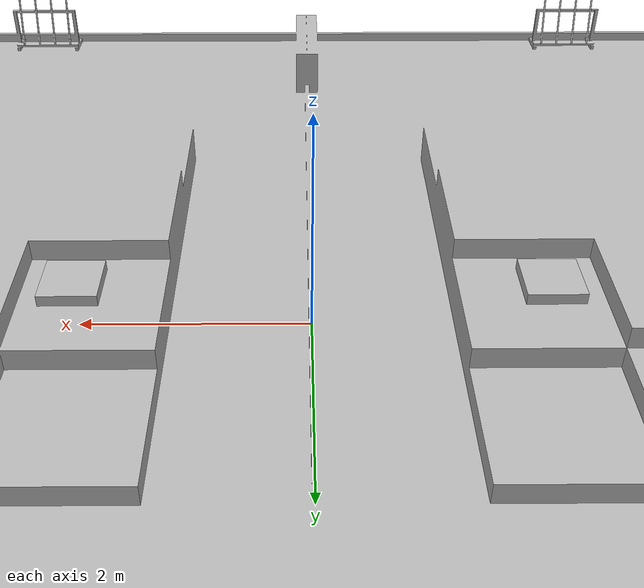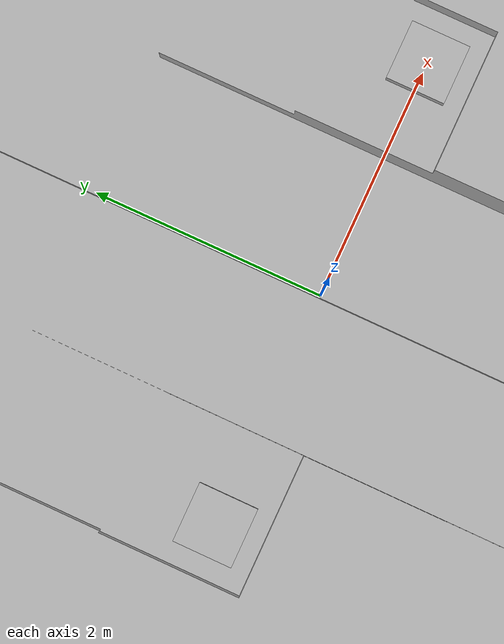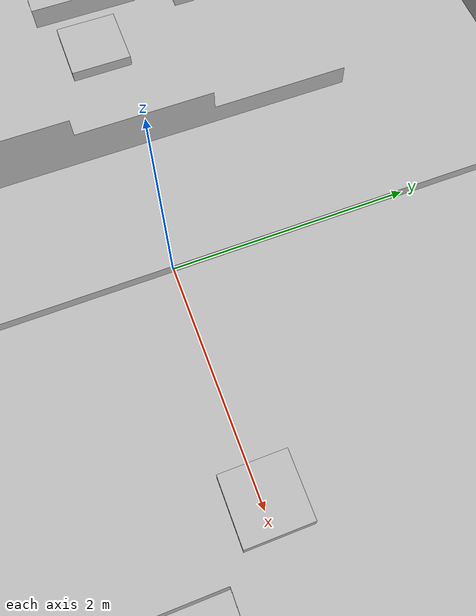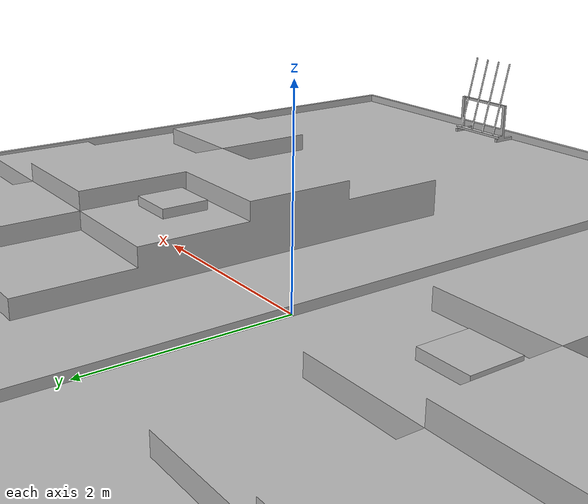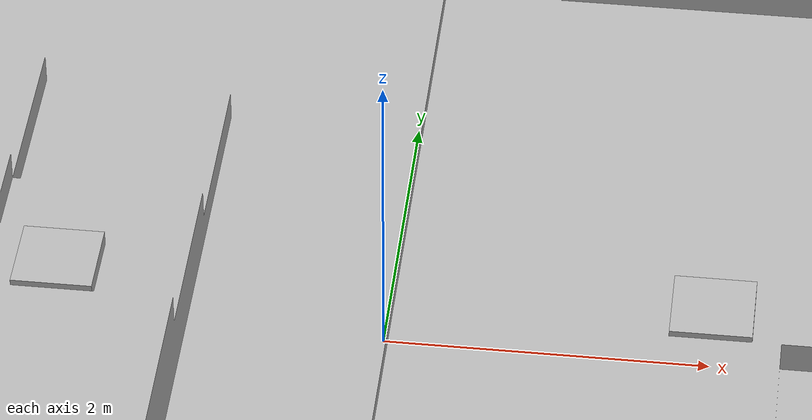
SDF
<?xml version="1.0" ?>
<sdf version="1.6">
  <world name="default">
    <!-- No sun or ground plane to avoid network model fetches -->

    <!-- Add a simple light source manually so we can see something -->
    <light type="directional" name="sun_manual">
      <cast_shadows>true</cast_shadows>
      <pose>0 0 10 0 0 0</pose>
      <diffuse>0.8 0.8 0.8 1</diffuse>
      <specular>0.2 0.2 0.2 1</specular>
      <attenuation>
        <range>1000</range>
        <constant>0.9</constant>
        <linear>0.01</linear>
        <quadratic>0.001</quadratic>
      </attenuation>
      <direction>-0.5 0.1 -0.9</direction>
    </light>

    <include>
      <uri>model://robocon_2026_arena</uri>
      <pose>0 0 0 0 0 0</pose>
    </include>

    <include>
      <uri>model://box_robocon</uri>
      <pose>2 0 0.25 0 0 0</pose> <!-- Placed at x=2 -->
    </include>

    <include>
      <uri>model://box_d01</uri>
      <pose>-2 0 0.25 0 0 0</pose> <!-- Placed at x=-2 -->
    </include>
  </world>
</sdf>

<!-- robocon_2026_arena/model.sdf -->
<sdf version='1.6'>
  <model name='robocon_2026_arena'>
    <static>true</static>
    <link name='link'>
      <collision name='collision'>
        <geometry>
          <mesh>
            <uri>model://robocon_2026_arena/meshes/arena.stl</uri>
            <scale>0.001 0.001 0.001</scale> <!-- Adjust scale if necessary, usually STEP is in mm, Gazebo is in meters -->
          </mesh>
        </geometry>
      </collision>
      <visual name='visual'>
        <geometry>
          <mesh>
            <uri>model://robocon_2026_arena/meshes/arena.stl</uri>
            <scale>0.001 0.001 0.001</scale>
          </mesh>
        </geometry>
      </visual>
    </link>
  </model>
</sdf>

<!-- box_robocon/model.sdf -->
<sdf version="1.6">
  <model name="box_robocon">
    <static>true</static>
    <link name="link">
      <visual name="visual">
        <geometry>
          <box>
            <size>0.5 0.5 0.5</size> <!-- 50cm box -->
          </box>
        </geometry>
        <material>
          <script>
            <uri>model://box_robocon/materials/scripts</uri>
            <uri>model://box_robocon/materials/textures</uri>
            <name>Robocon/Logo</name>
          </script>
        </material>
      </visual>
      <collision name="collision">
        <geometry>
          <box>
            <size>0.5 0.5 0.5</size>
          </box>
        </geometry>
      </collision>
    </link>
  </model>
</sdf>

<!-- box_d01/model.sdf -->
<sdf version="1.6">
  <model name="box_d01">
    <static>true</static>
    <link name="link">
      <visual name="visual">
        <geometry>
          <box>
            <size>0.5 0.5 0.5</size> <!-- 50cm box -->
          </box>
        </geometry>
        <material>
          <script>
            <uri>model://box_d01/materials/scripts</uri>
            <uri>model://box_d01/materials/textures</uri>
            <name>Robocon/D01</name>
          </script>
        </material>
      </visual>
      <collision name="collision">
        <geometry>
          <box>
            <size>0.5 0.5 0.5</size>
          </box>
        </geometry>
      </collision>
    </link>
  </model>
</sdf>
